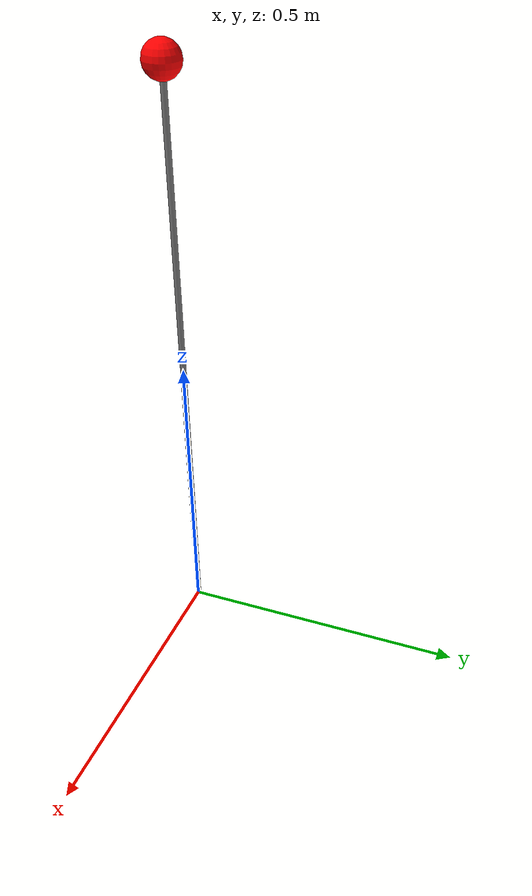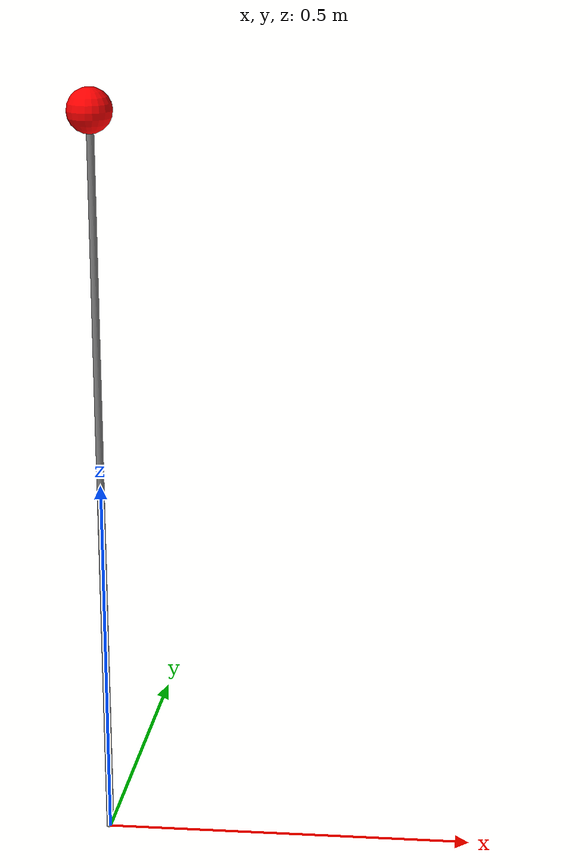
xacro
<?xml version="1.0"?>
<robot name="stick" xmlns:xacro="http://www.ros.org/wiki/xacro">
    <xacro:property name="cylinderLength" value="1.0" />
    <xacro:property name="cylinderRadius" value="0.005" />
    <xacro:property name="cylinderMass" value="0.002" />
    <xacro:property name="cylinderIxx" value="${1/12 * cylinderMass * (3 * cylinderRadius**2 + cylinderLength**2)}" />
    <xacro:property name="cylinderIyy" value="${1/12 * cylinderMass * (3 * cylinderRadius**2 + cylinderLength**2)}" />
    <xacro:property name="cylinderIzz" value="${1/2 * cylinderMass * cylinderRadius**2}" />
    <link name="base">
        <visual>
            <!-- with respect to the center of the cylinder -->
            <origin rpy="0 0 0" xyz="0 0 ${cylinderLength/2}"/>
            <geometry>
                <cylinder length="${cylinderLength}" radius="${cylinderRadius}" />
            </geometry>
            <material name="gray">
                <color rgba="0.5 0.5 0.5 1" />
            </material>
        </visual>

        <!-- similar to visual, can be different for safer zones/computation -->
        <collision>
            <origin rpy="0 0 0" xyz="0 0 ${cylinderLength/2}"/>
            <geometry>
                <cylinder length="${cylinderLength}" radius="${cylinderRadius}" />
            </geometry>
        </collision>

        <inertial>
            <origin rpy="0 0 0" xyz="0 0 ${cylinderLength/2}"/>

            <!-- in kgs -->
            <mass value="${cylinderMass}"/>

            <!-- calc from script -->
            <inertia ixx="${cylinderIxx}" ixy="0.0" ixz="0.0" iyy="${cylinderIyy}" iyz="0.0" izz="${cylinderIzz}"/>
        </inertial>

    </link>

    <xacro:property name="sphereRadius" value="0.03" />
    <xacro:property name="sphereMass" value="0.006" />
    <xacro:property name="sphereIxx" value="${2/3 * sphereMass * sphereRadius**2}" />
    <xacro:property name="sphereIyy" value="${2/3 * sphereMass * sphereRadius**2}" />
    <xacro:property name="sphereIzz" value="${2/3 * sphereMass * sphereRadius**2}" />
    <link name="top">
        <visual>
            <!-- shift origin to the top -->
            <origin rpy="0 0 0" xyz="0 0 ${cylinderLength}" />
            <geometry>
                <sphere radius="${sphereRadius}" />
            </geometry>
            <material name="red">
                <color rgba="1 0 0 1" />
            </material>
        </visual>

        <collision>
            <origin rpy="0 0 0" xyz="0 0 ${cylinderLength}" />
            <geometry>
                <sphere radius="${sphereRadius}" />
            </geometry>
        </collision>

        <inertial>
            <origin rpy="0 0 0" xyz="0 0 ${cylinderLength}"/>

            <!-- in kgs -->
            <mass value="${sphereMass}"/>

            <!-- calc from script -->
            <inertia ixx="${sphereIxx}" ixy="0.0" ixz="0.0" iyy="${sphereIyy}" iyz="0.0" izz="${sphereIzz}"/>
        </inertial>
    </link>

    <joint name="joint1" type="fixed">
        <parent link="top"/>
        <child link="base"/>
        <!-- with respect the parent reference -->
        <origin rpy="0 0 0" xyz="0 0 0" />
    </joint>

</robot>
